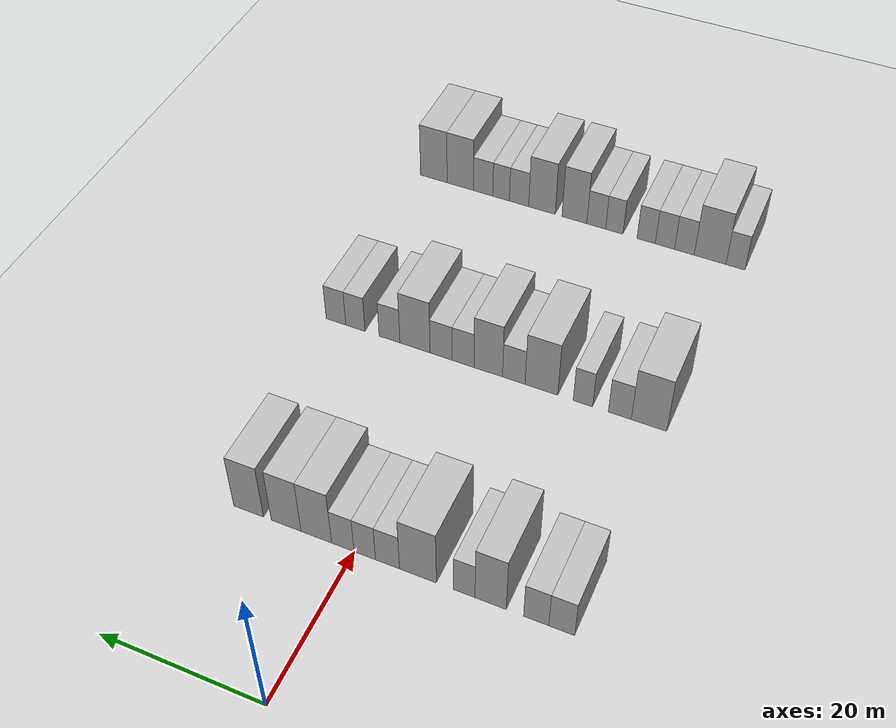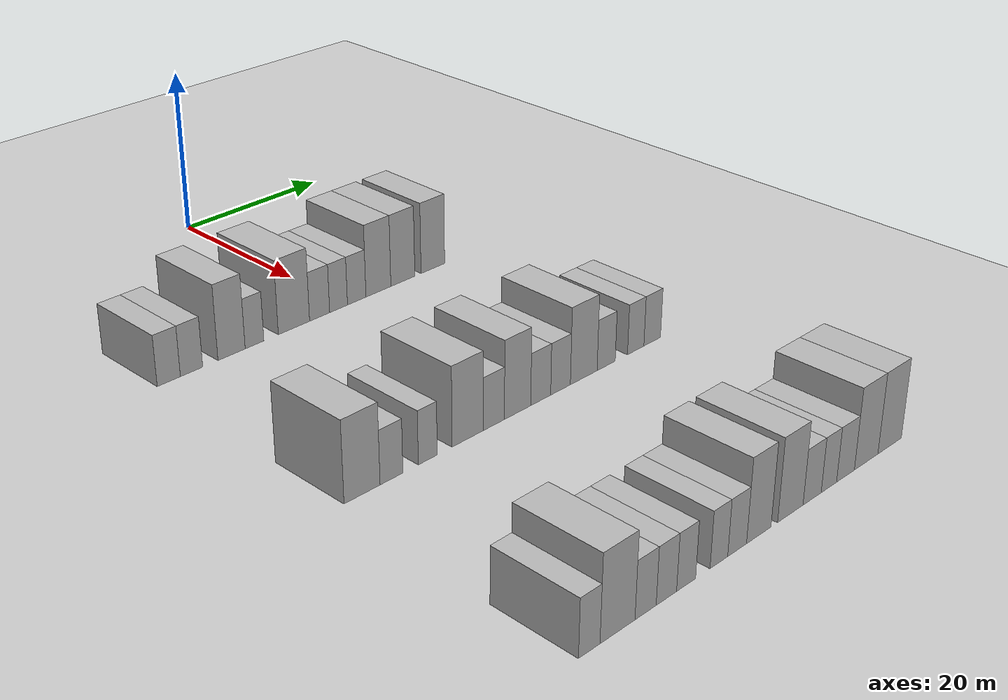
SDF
<sdf version="1.6">
 <world name="default">
  <include><name>ground_plane_1</name><uri>model://HANNAS_ground_plane</uri></include>
  <model name="building_111">
   <static>1</static>
   <pose>25.0000 -24.4640 0 0.000000 0.000000 0.000000</pose>
   <link name="link">
    <pose>0 0 3.00 0 0 0</pose>
    <collision name="collision"><geometry><box><size>10.0000 2.9236 6.0000</size></box></geometry></collision>
    <visual name="visual">
     <cast_shadows>0</cast_shadows>
     <geometry><box><size>10.0000 2.9236 6.0000</size></box></geometry>
     <material>
      <script>
       <uri>model://HANNAS_wall/materials/scripts</uri>
       <uri>model://HANNAS_wall/materials/textures</uri>
       <name>vrc/HANNAS_wall</name>
      </script>
     </material>
    </visual>
   </link>
  </model>
  <model name="building_112">
   <static>1</static>
   <pose>25.0000 -21.5684 0 0.000000 0.000000 0.000000</pose>
   <link name="link">
    <pose>0 0 3.00 0 0 0</pose>
    <collision name="collision"><geometry><box><size>10.0000 2.8677 6.0000</size></box></geometry></collision>
    <visual name="visual">
     <cast_shadows>0</cast_shadows>
     <geometry><box><size>10.0000 2.8677 6.0000</size></box></geometry>
     <material>
      <script>
       <uri>model://HANNAS_wall/materials/scripts</uri>
       <uri>model://HANNAS_wall/materials/textures</uri>
       <name>vrc/HANNAS_wall</name>
      </script>
     </material>
    </visual>
   </link>
  </model>
  <model name="building_113">
   <static>1</static>
   <pose>25.0000 -16.3178 0 0.000000 0.000000 0.000000</pose>
   <link name="link">
    <pose>0 0 4.50 0 0 0</pose>
    <collision name="collision"><geometry><box><size>10.0000 3.6336 9.0000</size></box></geometry></collision>
    <visual name="visual">
     <cast_shadows>0</cast_shadows>
     <geometry><box><size>10.0000 3.6336 9.0000</size></box></geometry>
     <material>
      <script>
       <uri>model://HANNAS_wall/materials/scripts</uri>
       <uri>model://HANNAS_wall/materials/textures</uri>
       <name>vrc/HANNAS_wall</name>
      </script>
     </material>
    </visual>
   </link>
  </model>
  <model name="building_114">
   <static>1</static>
   <pose>25.0000 -13.2259 0 0.000000 0.000000 0.000000</pose>
   <link name="link">
    <pose>0 0 3.00 0 0 0</pose>
    <collision name="collision"><geometry><box><size>10.0000 2.5501 6.0000</size></box></geometry></collision>
    <visual name="visual">
     <cast_shadows>0</cast_shadows>
     <geometry><box><size>10.0000 2.5501 6.0000</size></box></geometry>
     <material>
      <script>
       <uri>model://HANNAS_wall/materials/scripts</uri>
       <uri>model://HANNAS_wall/materials/textures</uri>
       <name>vrc/HANNAS_wall</name>
      </script>
     </material>
    </visual>
   </link>
  </model>
  <model name="building_115">
   <static>1</static>
   <pose>25.0000 -7.7329 0 0.000000 0.000000 0.000000</pose>
   <link name="link">
    <pose>0 0 4.50 0 0 0</pose>
    <collision name="collision"><geometry><box><size>10.0000 4.4360 9.0000</size></box></geometry></collision>
    <visual name="visual">
     <cast_shadows>0</cast_shadows>
     <geometry><box><size>10.0000 4.4360 9.0000</size></box></geometry>
     <material>
      <script>
       <uri>model://HANNAS_wall/materials/scripts</uri>
       <uri>model://HANNAS_wall/materials/textures</uri>
       <name>vrc/HANNAS_wall</name>
      </script>
     </material>
    </visual>
   </link>
  </model>
  <model name="building_116">
   <static>1</static>
   <pose>25.0000 -4.0563 0 0.000000 0.000000 0.000000</pose>
   <link name="link">
    <pose>0 0 3.00 0 0 0</pose>
    <collision name="collision"><geometry><box><size>10.0000 2.9171 6.0000</size></box></geometry></collision>
    <visual name="visual">
     <cast_shadows>0</cast_shadows>
     <geometry><box><size>10.0000 2.9171 6.0000</size></box></geometry>
     <material>
      <script>
       <uri>model://HANNAS_wall/materials/scripts</uri>
       <uri>model://HANNAS_wall/materials/textures</uri>
       <name>vrc/HANNAS_wall</name>
      </script>
     </material>
    </visual>
   </link>
  </model>
  <model name="building_117">
   <static>1</static>
   <pose>25.0000 -1.2800 0 0.000000 0.000000 0.000000</pose>
   <link name="link">
    <pose>0 0 3.00 0 0 0</pose>
    <collision name="collision"><geometry><box><size>10.0000 2.6355 6.0000</size></box></geometry></collision>
    <visual name="visual">
     <cast_shadows>0</cast_shadows>
     <geometry><box><size>10.0000 2.6355 6.0000</size></box></geometry>
     <material>
      <script>
       <uri>model://HANNAS_wall/materials/scripts</uri>
       <uri>model://HANNAS_wall/materials/textures</uri>
       <name>vrc/HANNAS_wall</name>
      </script>
     </material>
    </visual>
   </link>
  </model>
  <model name="building_118">
   <static>1</static>
   <pose>25.0000 1.4300 0 0.000000 0.000000 0.000000</pose>
   <link name="link">
    <pose>0 0 3.00 0 0 0</pose>
    <collision name="collision"><geometry><box><size>10.0000 2.7845 6.0000</size></box></geometry></collision>
    <visual name="visual">
     <cast_shadows>0</cast_shadows>
     <geometry><box><size>10.0000 2.7845 6.0000</size></box></geometry>
     <material>
      <script>
       <uri>model://HANNAS_wall/materials/scripts</uri>
       <uri>model://HANNAS_wall/materials/textures</uri>
       <name>vrc/HANNAS_wall</name>
      </script>
     </material>
    </visual>
   </link>
  </model>
  <model name="building_119">
   <static>1</static>
   <pose>25.0000 4.7410 0 0.000000 0.000000 0.000000</pose>
   <link name="link">
    <pose>0 0 4.50 0 0 0</pose>
    <collision name="collision"><geometry><box><size>10.0000 3.8375 9.0000</size></box></geometry></collision>
    <visual name="visual">
     <cast_shadows>0</cast_shadows>
     <geometry><box><size>10.0000 3.8375 9.0000</size></box></geometry>
     <material>
      <script>
       <uri>model://HANNAS_wall/materials/scripts</uri>
       <uri>model://HANNAS_wall/materials/textures</uri>
       <name>vrc/HANNAS_wall</name>
      </script>
     </material>
    </visual>
   </link>
  </model>
  <model name="building_120">
   <static>1</static>
   <pose>25.0000 8.5505 0 0.000000 0.000000 0.000000</pose>
   <link name="link">
    <pose>0 0 4.50 0 0 0</pose>
    <collision name="collision"><geometry><box><size>10.0000 3.7817 9.0000</size></box></geometry></collision>
    <visual name="visual">
     <cast_shadows>0</cast_shadows>
     <geometry><box><size>10.0000 3.7817 9.0000</size></box></geometry>
     <material>
      <script>
       <uri>model://HANNAS_wall/materials/scripts</uri>
       <uri>model://HANNAS_wall/materials/textures</uri>
       <name>vrc/HANNAS_wall</name>
      </script>
     </material>
    </visual>
   </link>
  </model>
  <model name="building_121">
   <static>1</static>
   <pose>25.0000 13.3614 0 0.000000 0.000000 0.000000</pose>
   <link name="link">
    <pose>0 0 4.50 0 0 0</pose>
    <collision name="collision"><geometry><box><size>10.0000 3.8401 9.0000</size></box></geometry></collision>
    <visual name="visual">
     <cast_shadows>0</cast_shadows>
     <geometry><box><size>10.0000 3.8401 9.0000</size></box></geometry>
     <material>
      <script>
       <uri>model://HANNAS_wall/materials/scripts</uri>
       <uri>model://HANNAS_wall/materials/textures</uri>
       <name>vrc/HANNAS_wall</name>
      </script>
     </material>
    </visual>
   </link>
  </model>
  <model name="building_356">
   <static>1</static>
   <pose>55.0000 -24.1548 0 0.000000 0.000000 0.000000</pose>
   <link name="link">
    <pose>0 0 4.50 0 0 0</pose>
    <collision name="collision"><geometry><box><size>10.0000 4.4505 9.0000</size></box></geometry></collision>
    <visual name="visual">
     <cast_shadows>0</cast_shadows>
     <geometry><box><size>10.0000 4.4505 9.0000</size></box></geometry>
     <material>
      <script>
       <uri>model://HANNAS_wall/materials/scripts</uri>
       <uri>model://HANNAS_wall/materials/textures</uri>
       <name>vrc/HANNAS_wall</name>
      </script>
     </material>
    </visual>
   </link>
  </model>
  <model name="building_357">
   <static>1</static>
   <pose>55.0000 -20.4792 0 0.000000 0.000000 0.000000</pose>
   <link name="link">
    <pose>0 0 3.00 0 0 0</pose>
    <collision name="collision"><geometry><box><size>10.0000 2.9007 6.0000</size></box></geometry></collision>
    <visual name="visual">
     <cast_shadows>0</cast_shadows>
     <geometry><box><size>10.0000 2.9007 6.0000</size></box></geometry>
     <material>
      <script>
       <uri>model://HANNAS_wall/materials/scripts</uri>
       <uri>model://HANNAS_wall/materials/textures</uri>
       <name>vrc/HANNAS_wall</name>
      </script>
     </material>
    </visual>
   </link>
  </model>
  <model name="building_358">
   <static>1</static>
   <pose>55.0000 -15.7833 0 0.000000 0.000000 0.000000</pose>
   <link name="link">
    <pose>0 0 3.00 0 0 0</pose>
    <collision name="collision"><geometry><box><size>10.0000 2.4911 6.0000</size></box></geometry></collision>
    <visual name="visual">
     <cast_shadows>0</cast_shadows>
     <geometry><box><size>10.0000 2.4911 6.0000</size></box></geometry>
     <material>
      <script>
       <uri>model://HANNAS_wall/materials/scripts</uri>
       <uri>model://HANNAS_wall/materials/textures</uri>
       <name>vrc/HANNAS_wall</name>
      </script>
     </material>
    </visual>
   </link>
  </model>
  <model name="building_359">
   <static>1</static>
   <pose>55.0000 -10.3987 0 0.000000 0.000000 0.000000</pose>
   <link name="link">
    <pose>0 0 4.50 0 0 0</pose>
    <collision name="collision"><geometry><box><size>10.0000 4.2783 9.0000</size></box></geometry></collision>
    <visual name="visual">
     <cast_shadows>0</cast_shadows>
     <geometry><box><size>10.0000 4.2783 9.0000</size></box></geometry>
     <material>
      <script>
       <uri>model://HANNAS_wall/materials/scripts</uri>
       <uri>model://HANNAS_wall/materials/textures</uri>
       <name>vrc/HANNAS_wall</name>
      </script>
     </material>
    </visual>
   </link>
  </model>
  <model name="building_360">
   <static>1</static>
   <pose>55.0000 -6.7649 0 0.000000 0.000000 0.000000</pose>
   <link name="link">
    <pose>0 0 3.00 0 0 0</pose>
    <collision name="collision"><geometry><box><size>10.0000 2.9892 6.0000</size></box></geometry></collision>
    <visual name="visual">
     <cast_shadows>0</cast_shadows>
     <geometry><box><size>10.0000 2.9892 6.0000</size></box></geometry>
     <material>
      <script>
       <uri>model://HANNAS_wall/materials/scripts</uri>
       <uri>model://HANNAS_wall/materials/textures</uri>
       <name>vrc/HANNAS_wall</name>
      </script>
     </material>
    </visual>
   </link>
  </model>
  <model name="building_361">
   <static>1</static>
   <pose>55.0000 -3.3612 0 0.000000 0.000000 0.000000</pose>
   <link name="link">
    <pose>0 0 4.50 0 0 0</pose>
    <collision name="collision"><geometry><box><size>10.0000 3.8183 9.0000</size></box></geometry></collision>
    <visual name="visual">
     <cast_shadows>0</cast_shadows>
     <geometry><box><size>10.0000 3.8183 9.0000</size></box></geometry>
     <material>
      <script>
       <uri>model://HANNAS_wall/materials/scripts</uri>
       <uri>model://HANNAS_wall/materials/textures</uri>
       <name>vrc/HANNAS_wall</name>
      </script>
     </material>
    </visual>
   </link>
  </model>
  <model name="building_362">
   <static>1</static>
   <pose>55.0000 0.0303 0 0.000000 0.000000 0.000000</pose>
   <link name="link">
    <pose>0 0 3.00 0 0 0</pose>
    <collision name="collision"><geometry><box><size>10.0000 2.9646 6.0000</size></box></geometry></collision>
    <visual name="visual">
     <cast_shadows>0</cast_shadows>
     <geometry><box><size>10.0000 2.9646 6.0000</size></box></geometry>
     <material>
      <script>
       <uri>model://HANNAS_wall/materials/scripts</uri>
       <uri>model://HANNAS_wall/materials/textures</uri>
       <name>vrc/HANNAS_wall</name>
      </script>
     </material>
    </visual>
   </link>
  </model>
  <model name="building_363">
   <static>1</static>
   <pose>55.0000 3.0092 0 0.000000 0.000000 0.000000</pose>
   <link name="link">
    <pose>0 0 3.00 0 0 0</pose>
    <collision name="collision"><geometry><box><size>10.0000 2.9932 6.0000</size></box></geometry></collision>
    <visual name="visual">
     <cast_shadows>0</cast_shadows>
     <geometry><box><size>10.0000 2.9932 6.0000</size></box></geometry>
     <material>
      <script>
       <uri>model://HANNAS_wall/materials/scripts</uri>
       <uri>model://HANNAS_wall/materials/textures</uri>
       <name>vrc/HANNAS_wall</name>
      </script>
     </material>
    </visual>
   </link>
  </model>
  <model name="building_364">
   <static>1</static>
   <pose>55.0000 6.5915 0 0.000000 0.000000 0.000000</pose>
   <link name="link">
    <pose>0 0 4.50 0 0 0</pose>
    <collision name="collision"><geometry><box><size>10.0000 4.1714 9.0000</size></box></geometry></collision>
    <visual name="visual">
     <cast_shadows>0</cast_shadows>
     <geometry><box><size>10.0000 4.1714 9.0000</size></box></geometry>
     <material>
      <script>
       <uri>model://HANNAS_wall/materials/scripts</uri>
       <uri>model://HANNAS_wall/materials/textures</uri>
       <name>vrc/HANNAS_wall</name>
      </script>
     </material>
    </visual>
   </link>
  </model>
  <model name="building_365">
   <static>1</static>
   <pose>55.0000 10.1270 0 0.000000 0.000000 0.000000</pose>
   <link name="link">
    <pose>0 0 3.00 0 0 0</pose>
    <collision name="collision"><geometry><box><size>10.0000 2.8998 6.0000</size></box></geometry></collision>
    <visual name="visual">
     <cast_shadows>0</cast_shadows>
     <geometry><box><size>10.0000 2.8998 6.0000</size></box></geometry>
     <material>
      <script>
       <uri>model://HANNAS_wall/materials/scripts</uri>
       <uri>model://HANNAS_wall/materials/textures</uri>
       <name>vrc/HANNAS_wall</name>
      </script>
     </material>
    </visual>
   </link>
  </model>
  <model name="building_366">
   <static>1</static>
   <pose>55.0000 14.9346 0 0.000000 0.000000 0.000000</pose>
   <link name="link">
    <pose>0 0 3.00 0 0 0</pose>
    <collision name="collision"><geometry><box><size>10.0000 2.7154 6.0000</size></box></geometry></collision>
    <visual name="visual">
     <cast_shadows>0</cast_shadows>
     <geometry><box><size>10.0000 2.7154 6.0000</size></box></geometry>
     <material>
      <script>
       <uri>model://HANNAS_wall/materials/scripts</uri>
       <uri>model://HANNAS_wall/materials/textures</uri>
       <name>vrc/HANNAS_wall</name>
      </script>
     </material>
    </visual>
   </link>
  </model>
  <model name="building_367">
   <static>1</static>
   <pose>55.0000 17.6912 0 0.000000 0.000000 0.000000</pose>
   <link name="link">
    <pose>0 0 3.00 0 0 0</pose>
    <collision name="collision"><geometry><box><size>10.0000 2.7979 6.0000</size></box></geometry></collision>
    <visual name="visual">
     <cast_shadows>0</cast_shadows>
     <geometry><box><size>10.0000 2.7979 6.0000</size></box></geometry>
     <material>
      <script>
       <uri>model://HANNAS_wall/materials/scripts</uri>
       <uri>model://HANNAS_wall/materials/textures</uri>
       <name>vrc/HANNAS_wall</name>
      </script>
     </material>
    </visual>
   </link>
  </model>
  <model name="building_590">
   <static>1</static>
   <pose>85.0000 -26.1889 0 0.000000 0.000000 0.000000</pose>
   <link name="link">
    <pose>0 0 3.00 0 0 0</pose>
    <collision name="collision"><geometry><box><size>10.0000 2.6073 6.0000</size></box></geometry></collision>
    <visual name="visual">
     <cast_shadows>0</cast_shadows>
     <geometry><box><size>10.0000 2.6073 6.0000</size></box></geometry>
     <material>
      <script>
       <uri>model://HANNAS_wall/materials/scripts</uri>
       <uri>model://HANNAS_wall/materials/textures</uri>
       <name>vrc/HANNAS_wall</name>
      </script>
     </material>
    </visual>
   </link>
  </model>
  <model name="building_591">
   <static>1</static>
   <pose>85.0000 -22.6970 0 0.000000 0.000000 0.000000</pose>
   <link name="link">
    <pose>0 0 4.50 0 0 0</pose>
    <collision name="collision"><geometry><box><size>10.0000 4.3766 9.0000</size></box></geometry></collision>
    <visual name="visual">
     <cast_shadows>0</cast_shadows>
     <geometry><box><size>10.0000 4.3766 9.0000</size></box></geometry>
     <material>
      <script>
       <uri>model://HANNAS_wall/materials/scripts</uri>
       <uri>model://HANNAS_wall/materials/textures</uri>
       <name>vrc/HANNAS_wall</name>
      </script>
     </material>
    </visual>
   </link>
  </model>
  <model name="building_592">
   <static>1</static>
   <pose>85.0000 -19.1385 0 0.000000 0.000000 0.000000</pose>
   <link name="link">
    <pose>0 0 3.00 0 0 0</pose>
    <collision name="collision"><geometry><box><size>10.0000 2.7404 6.0000</size></box></geometry></collision>
    <visual name="visual">
     <cast_shadows>0</cast_shadows>
     <geometry><box><size>10.0000 2.7404 6.0000</size></box></geometry>
     <material>
      <script>
       <uri>model://HANNAS_wall/materials/scripts</uri>
       <uri>model://HANNAS_wall/materials/textures</uri>
       <name>vrc/HANNAS_wall</name>
      </script>
     </material>
    </visual>
   </link>
  </model>
  <model name="building_593">
   <static>1</static>
   <pose>85.0000 -16.4190 0 0.000000 0.000000 0.000000</pose>
   <link name="link">
    <pose>0 0 3.00 0 0 0</pose>
    <collision name="collision"><geometry><box><size>10.0000 2.6986 6.0000</size></box></geometry></collision>
    <visual name="visual">
     <cast_shadows>0</cast_shadows>
     <geometry><box><size>10.0000 2.6986 6.0000</size></box></geometry>
     <material>
      <script>
       <uri>model://HANNAS_wall/materials/scripts</uri>
       <uri>model://HANNAS_wall/materials/textures</uri>
       <name>vrc/HANNAS_wall</name>
      </script>
     </material>
    </visual>
   </link>
  </model>
  <model name="building_594">
   <static>1</static>
   <pose>85.0000 -13.7810 0 0.000000 0.000000 0.000000</pose>
   <link name="link">
    <pose>0 0 3.00 0 0 0</pose>
    <collision name="collision"><geometry><box><size>10.0000 2.5774 6.0000</size></box></geometry></collision>
    <visual name="visual">
     <cast_shadows>0</cast_shadows>
     <geometry><box><size>10.0000 2.5774 6.0000</size></box></geometry>
     <material>
      <script>
       <uri>model://HANNAS_wall/materials/scripts</uri>
       <uri>model://HANNAS_wall/materials/textures</uri>
       <name>vrc/HANNAS_wall</name>
      </script>
     </material>
    </visual>
   </link>
  </model>
  <model name="building_595">
   <static>1</static>
   <pose>85.0000 -9.2481 0 0.000000 0.000000 0.000000</pose>
   <link name="link">
    <pose>0 0 3.00 0 0 0</pose>
    <collision name="collision"><geometry><box><size>10.0000 2.4883 6.0000</size></box></geometry></collision>
    <visual name="visual">
     <cast_shadows>0</cast_shadows>
     <geometry><box><size>10.0000 2.4883 6.0000</size></box></geometry>
     <material>
      <script>
       <uri>model://HANNAS_wall/materials/scripts</uri>
       <uri>model://HANNAS_wall/materials/textures</uri>
       <name>vrc/HANNAS_wall</name>
      </script>
     </material>
    </visual>
   </link>
  </model>
  <model name="building_596">
   <static>1</static>
   <pose>85.0000 -6.6465 0 0.000000 0.000000 0.000000</pose>
   <link name="link">
    <pose>0 0 3.00 0 0 0</pose>
    <collision name="collision"><geometry><box><size>10.0000 2.7150 6.0000</size></box></geometry></collision>
    <visual name="visual">
     <cast_shadows>0</cast_shadows>
     <geometry><box><size>10.0000 2.7150 6.0000</size></box></geometry>
     <material>
      <script>
       <uri>model://HANNAS_wall/materials/scripts</uri>
       <uri>model://HANNAS_wall/materials/textures</uri>
       <name>vrc/HANNAS_wall</name>
      </script>
     </material>
    </visual>
   </link>
  </model>
  <model name="building_597">
   <static>1</static>
   <pose>85.0000 -3.4780 0 0.000000 0.000000 0.000000</pose>
   <link name="link">
    <pose>0 0 4.50 0 0 0</pose>
    <collision name="collision"><geometry><box><size>10.0000 3.6219 9.0000</size></box></geometry></collision>
    <visual name="visual">
     <cast_shadows>0</cast_shadows>
     <geometry><box><size>10.0000 3.6219 9.0000</size></box></geometry>
     <material>
      <script>
       <uri>model://HANNAS_wall/materials/scripts</uri>
       <uri>model://HANNAS_wall/materials/textures</uri>
       <name>vrc/HANNAS_wall</name>
      </script>
     </material>
    </visual>
   </link>
  </model>
  <model name="building_598">
   <static>1</static>
   <pose>85.0000 1.2938 0 0.000000 0.000000 0.000000</pose>
   <link name="link">
    <pose>0 0 4.50 0 0 0</pose>
    <collision name="collision"><geometry><box><size>10.0000 3.9216 9.0000</size></box></geometry></collision>
    <visual name="visual">
     <cast_shadows>0</cast_shadows>
     <geometry><box><size>10.0000 3.9216 9.0000</size></box></geometry>
     <material>
      <script>
       <uri>model://HANNAS_wall/materials/scripts</uri>
       <uri>model://HANNAS_wall/materials/textures</uri>
       <name>vrc/HANNAS_wall</name>
      </script>
     </material>
    </visual>
   </link>
  </model>
  <model name="building_599">
   <static>1</static>
   <pose>85.0000 4.6931 0 0.000000 0.000000 0.000000</pose>
   <link name="link">
    <pose>0 0 3.00 0 0 0</pose>
    <collision name="collision"><geometry><box><size>10.0000 2.8771 6.0000</size></box></geometry></collision>
    <visual name="visual">
     <cast_shadows>0</cast_shadows>
     <geometry><box><size>10.0000 2.8771 6.0000</size></box></geometry>
     <material>
      <script>
       <uri>model://HANNAS_wall/materials/scripts</uri>
       <uri>model://HANNAS_wall/materials/textures</uri>
       <name>vrc/HANNAS_wall</name>
      </script>
     </material>
    </visual>
   </link>
  </model>
  <model name="building_600">
   <static>1</static>
   <pose>85.0000 7.3771 0 0.000000 0.000000 0.000000</pose>
   <link name="link">
    <pose>0 0 3.00 0 0 0</pose>
    <collision name="collision"><geometry><box><size>10.0000 2.4909 6.0000</size></box></geometry></collision>
    <visual name="visual">
     <cast_shadows>0</cast_shadows>
     <geometry><box><size>10.0000 2.4909 6.0000</size></box></geometry>
     <material>
      <script>
       <uri>model://HANNAS_wall/materials/scripts</uri>
       <uri>model://HANNAS_wall/materials/textures</uri>
       <name>vrc/HANNAS_wall</name>
      </script>
     </material>
    </visual>
   </link>
  </model>
  <model name="building_601">
   <static>1</static>
   <pose>85.0000 10.0949 0 0.000000 0.000000 0.000000</pose>
   <link name="link">
    <pose>0 0 3.00 0 0 0</pose>
    <collision name="collision"><geometry><box><size>10.0000 2.9447 6.0000</size></box></geometry></collision>
    <visual name="visual">
     <cast_shadows>0</cast_shadows>
     <geometry><box><size>10.0000 2.9447 6.0000</size></box></geometry>
     <material>
      <script>
       <uri>model://HANNAS_wall/materials/scripts</uri>
       <uri>model://HANNAS_wall/materials/textures</uri>
       <name>vrc/HANNAS_wall</name>
      </script>
     </material>
    </visual>
   </link>
  </model>
  <model name="building_602">
   <static>1</static>
   <pose>85.0000 13.5741 0 0.000000 0.000000 0.000000</pose>
   <link name="link">
    <pose>0 0 4.50 0 0 0</pose>
    <collision name="collision"><geometry><box><size>10.0000 4.0136 9.0000</size></box></geometry></collision>
    <visual name="visual">
     <cast_shadows>0</cast_shadows>
     <geometry><box><size>10.0000 4.0136 9.0000</size></box></geometry>
     <material>
      <script>
       <uri>model://HANNAS_wall/materials/scripts</uri>
       <uri>model://HANNAS_wall/materials/textures</uri>
       <name>vrc/HANNAS_wall</name>
      </script>
     </material>
    </visual>
   </link>
  </model>
  <model name="building_603">
   <static>1</static>
   <pose>85.0000 17.6319 0 0.000000 0.000000 0.000000</pose>
   <link name="link">
    <pose>0 0 4.50 0 0 0</pose>
    <collision name="collision"><geometry><box><size>10.0000 4.1021 9.0000</size></box></geometry></collision>
    <visual name="visual">
     <cast_shadows>0</cast_shadows>
     <geometry><box><size>10.0000 4.1021 9.0000</size></box></geometry>
     <material>
      <script>
       <uri>model://HANNAS_wall/materials/scripts</uri>
       <uri>model://HANNAS_wall/materials/textures</uri>
       <name>vrc/HANNAS_wall</name>
      </script>
     </material>
    </visual>
   </link>
  </model>
 </world>
</sdf>
